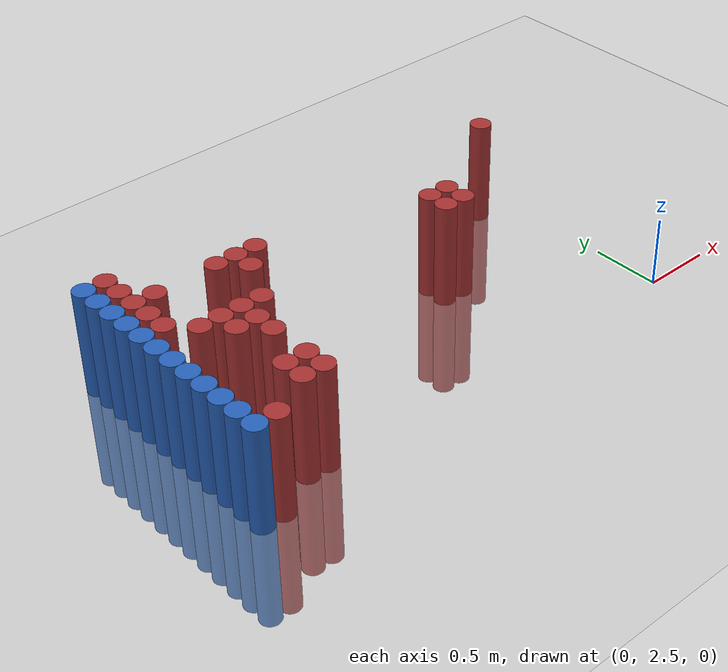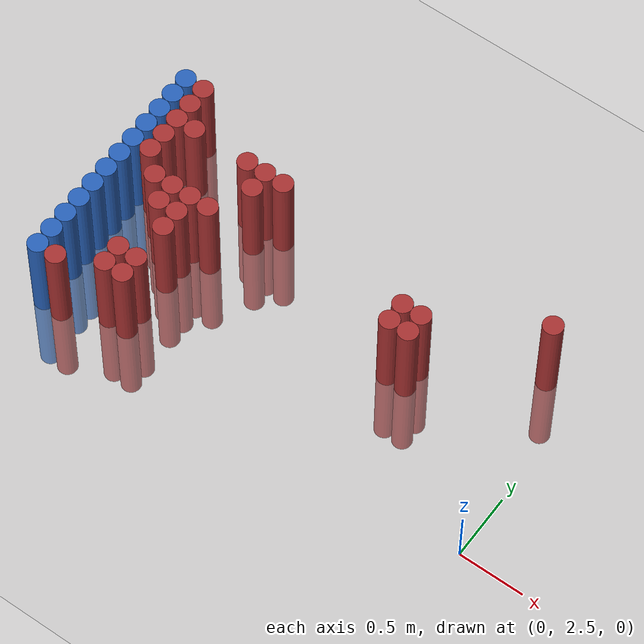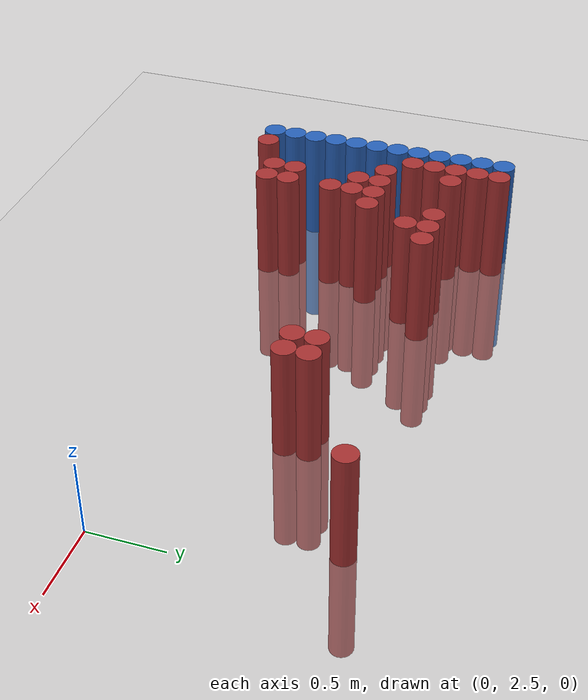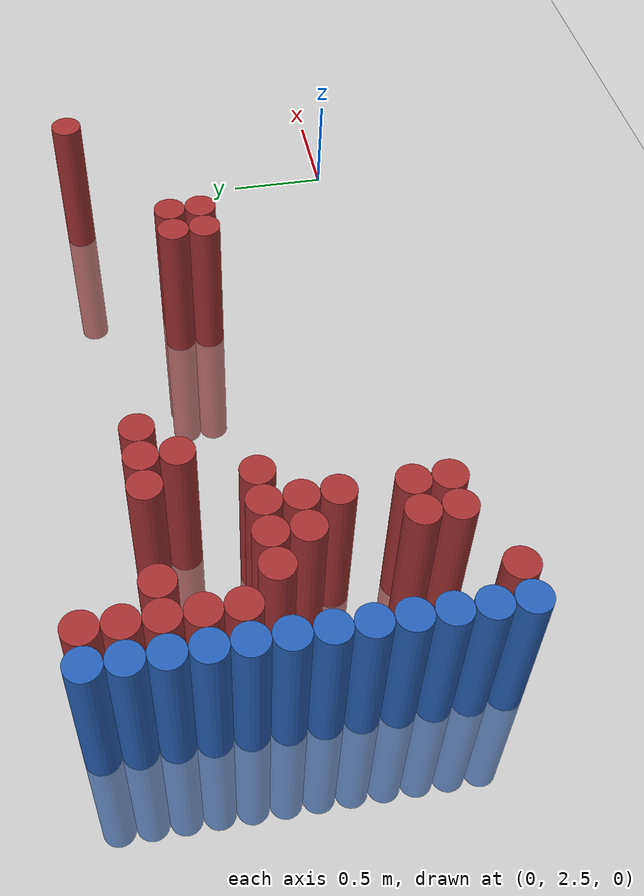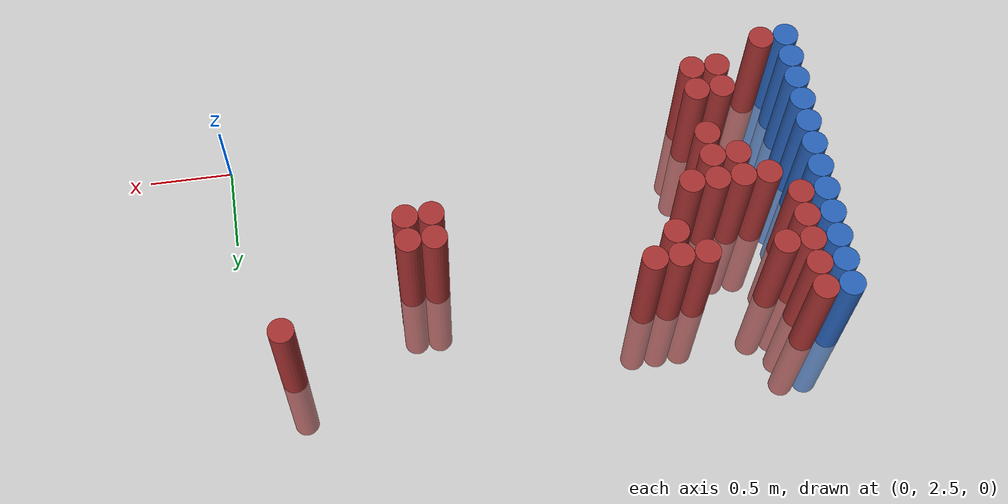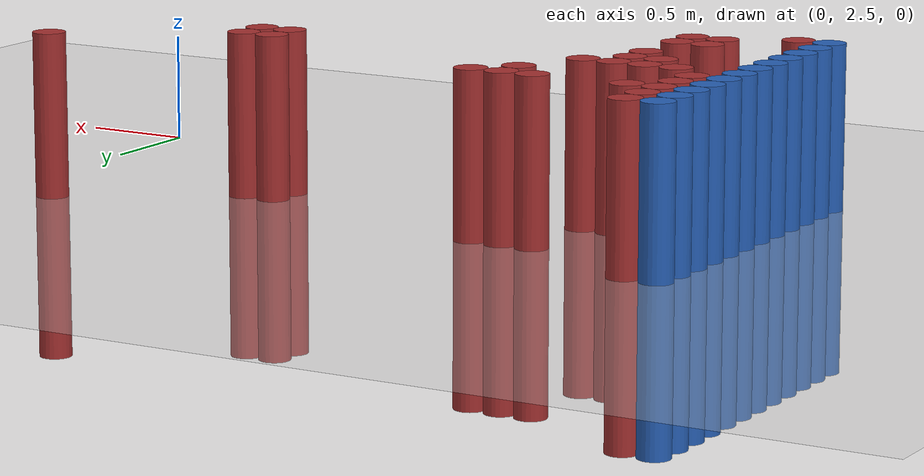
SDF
<sdf version="1.6">
 <world name="default">
  <model name="ground_plane">
   <static>1</static>
   <link name="link">
    <collision name="collision">
     <geometry><plane><normal>0 0 1</normal><size>100 100</size></plane></geometry>
     <surface><friction><ode><mu>100</mu><mu2>50</mu2></ode></friction></surface>
    </collision>
    <visual name="visual">
     <cast_shadows>0</cast_shadows>
     <geometry><plane><normal>0 0 1</normal><size>100 100</size></plane></geometry>
     <material>
      <script><uri>file://media/materials/scripts/gazebo.material</uri><name>Gazebo/Grey</name></script>
     </material>
    </visual>
   </link>
  </model>
  <model name="unit_cylinder_147">
   <static>1</static>
   <pose>-3.425000 2.425000 0.000000 0.000000 0.000000 0.000000</pose>
   <link name="link">
    <inertial>
     <mass>1</mass>
     <inertia><ixx>0.145833</ixx><ixy>0</ixy><ixz>0</ixz><iyy>0.145833</iyy><iyz>0</iyz><izz>0.125</izz></inertia>
    </inertial>
    <collision name="collision">
     <geometry><cylinder><radius>0.075000</radius><length>1.5</length></cylinder></geometry>
    </collision>
    <visual name="visual">
     <geometry><cylinder><radius>0.075000</radius><length>1.5</length></cylinder></geometry>
     <material>
      <ambient>0.152000 0.379000 0.720000 1</ambient>
      <diffuse>0.152000 0.379000 0.720000 1</diffuse>
     </material>
     <material>
      <script><name>Gazebo/Grey</name><uri>file://media/materials/scripts/gazebo.material</uri></script>
     </material>
    </visual>
   </link>
  </model>
  <model name="unit_cylinder_149">
   <static>1</static>
   <pose>-3.425000 2.575000 0.000000 0.000000 0.000000 0.000000</pose>
   <link name="link">
    <inertial>
     <mass>1</mass>
     <inertia><ixx>0.145833</ixx><ixy>0</ixy><ixz>0</ixz><iyy>0.145833</iyy><iyz>0</iyz><izz>0.125</izz></inertia>
    </inertial>
    <collision name="collision">
     <geometry><cylinder><radius>0.075000</radius><length>1.5</length></cylinder></geometry>
    </collision>
    <visual name="visual">
     <geometry><cylinder><radius>0.075000</radius><length>1.5</length></cylinder></geometry>
     <material>
      <ambient>0.152000 0.379000 0.720000 1</ambient>
      <diffuse>0.152000 0.379000 0.720000 1</diffuse>
     </material>
     <material>
      <script><name>Gazebo/Grey</name><uri>file://media/materials/scripts/gazebo.material</uri></script>
     </material>
    </visual>
   </link>
  </model>
  <model name="unit_cylinder_151">
   <static>1</static>
   <pose>-3.425000 2.725000 0.000000 0.000000 0.000000 0.000000</pose>
   <link name="link">
    <inertial>
     <mass>1</mass>
     <inertia><ixx>0.145833</ixx><ixy>0</ixy><ixz>0</ixz><iyy>0.145833</iyy><iyz>0</iyz><izz>0.125</izz></inertia>
    </inertial>
    <collision name="collision">
     <geometry><cylinder><radius>0.075000</radius><length>1.5</length></cylinder></geometry>
    </collision>
    <visual name="visual">
     <geometry><cylinder><radius>0.075000</radius><length>1.5</length></cylinder></geometry>
     <material>
      <ambient>0.152000 0.379000 0.720000 1</ambient>
      <diffuse>0.152000 0.379000 0.720000 1</diffuse>
     </material>
     <material>
      <script><name>Gazebo/Grey</name><uri>file://media/materials/scripts/gazebo.material</uri></script>
     </material>
    </visual>
   </link>
  </model>
  <model name="unit_cylinder_153">
   <static>1</static>
   <pose>-3.425000 2.875000 0.000000 0.000000 0.000000 0.000000</pose>
   <link name="link">
    <inertial>
     <mass>1</mass>
     <inertia><ixx>0.145833</ixx><ixy>0</ixy><ixz>0</ixz><iyy>0.145833</iyy><iyz>0</iyz><izz>0.125</izz></inertia>
    </inertial>
    <collision name="collision">
     <geometry><cylinder><radius>0.075000</radius><length>1.5</length></cylinder></geometry>
    </collision>
    <visual name="visual">
     <geometry><cylinder><radius>0.075000</radius><length>1.5</length></cylinder></geometry>
     <material>
      <ambient>0.152000 0.379000 0.720000 1</ambient>
      <diffuse>0.152000 0.379000 0.720000 1</diffuse>
     </material>
     <material>
      <script><name>Gazebo/Grey</name><uri>file://media/materials/scripts/gazebo.material</uri></script>
     </material>
    </visual>
   </link>
  </model>
  <model name="unit_cylinder_155">
   <static>1</static>
   <pose>-3.425000 3.025000 0.000000 0.000000 0.000000 0.000000</pose>
   <link name="link">
    <inertial>
     <mass>1</mass>
     <inertia><ixx>0.145833</ixx><ixy>0</ixy><ixz>0</ixz><iyy>0.145833</iyy><iyz>0</iyz><izz>0.125</izz></inertia>
    </inertial>
    <collision name="collision">
     <geometry><cylinder><radius>0.075000</radius><length>1.5</length></cylinder></geometry>
    </collision>
    <visual name="visual">
     <geometry><cylinder><radius>0.075000</radius><length>1.5</length></cylinder></geometry>
     <material>
      <ambient>0.152000 0.379000 0.720000 1</ambient>
      <diffuse>0.152000 0.379000 0.720000 1</diffuse>
     </material>
     <material>
      <script><name>Gazebo/Grey</name><uri>file://media/materials/scripts/gazebo.material</uri></script>
     </material>
    </visual>
   </link>
  </model>
  <model name="unit_cylinder_157">
   <static>1</static>
   <pose>-3.425000 3.175000 0.000000 0.000000 0.000000 0.000000</pose>
   <link name="link">
    <inertial>
     <mass>1</mass>
     <inertia><ixx>0.145833</ixx><ixy>0</ixy><ixz>0</ixz><iyy>0.145833</iyy><iyz>0</iyz><izz>0.125</izz></inertia>
    </inertial>
    <collision name="collision">
     <geometry><cylinder><radius>0.075000</radius><length>1.5</length></cylinder></geometry>
    </collision>
    <visual name="visual">
     <geometry><cylinder><radius>0.075000</radius><length>1.5</length></cylinder></geometry>
     <material>
      <ambient>0.152000 0.379000 0.720000 1</ambient>
      <diffuse>0.152000 0.379000 0.720000 1</diffuse>
     </material>
     <material>
      <script><name>Gazebo/Grey</name><uri>file://media/materials/scripts/gazebo.material</uri></script>
     </material>
    </visual>
   </link>
  </model>
  <model name="unit_cylinder_159">
   <static>1</static>
   <pose>-3.425000 3.325000 0.000000 0.000000 0.000000 0.000000</pose>
   <link name="link">
    <inertial>
     <mass>1</mass>
     <inertia><ixx>0.145833</ixx><ixy>0</ixy><ixz>0</ixz><iyy>0.145833</iyy><iyz>0</iyz><izz>0.125</izz></inertia>
    </inertial>
    <collision name="collision">
     <geometry><cylinder><radius>0.075000</radius><length>1.5</length></cylinder></geometry>
    </collision>
    <visual name="visual">
     <geometry><cylinder><radius>0.075000</radius><length>1.5</length></cylinder></geometry>
     <material>
      <ambient>0.152000 0.379000 0.720000 1</ambient>
      <diffuse>0.152000 0.379000 0.720000 1</diffuse>
     </material>
     <material>
      <script><name>Gazebo/Grey</name><uri>file://media/materials/scripts/gazebo.material</uri></script>
     </material>
    </visual>
   </link>
  </model>
  <model name="unit_cylinder_161">
   <static>1</static>
   <pose>-3.425000 3.475000 0.000000 0.000000 0.000000 0.000000</pose>
   <link name="link">
    <inertial>
     <mass>1</mass>
     <inertia><ixx>0.145833</ixx><ixy>0</ixy><ixz>0</ixz><iyy>0.145833</iyy><iyz>0</iyz><izz>0.125</izz></inertia>
    </inertial>
    <collision name="collision">
     <geometry><cylinder><radius>0.075000</radius><length>1.5</length></cylinder></geometry>
    </collision>
    <visual name="visual">
     <geometry><cylinder><radius>0.075000</radius><length>1.5</length></cylinder></geometry>
     <material>
      <ambient>0.152000 0.379000 0.720000 1</ambient>
      <diffuse>0.152000 0.379000 0.720000 1</diffuse>
     </material>
     <material>
      <script><name>Gazebo/Grey</name><uri>file://media/materials/scripts/gazebo.material</uri></script>
     </material>
    </visual>
   </link>
  </model>
  <model name="unit_cylinder_163">
   <static>1</static>
   <pose>-3.425000 3.625000 0.000000 0.000000 0.000000 0.000000</pose>
   <link name="link">
    <inertial>
     <mass>1</mass>
     <inertia><ixx>0.145833</ixx><ixy>0</ixy><ixz>0</ixz><iyy>0.145833</iyy><iyz>0</iyz><izz>0.125</izz></inertia>
    </inertial>
    <collision name="collision">
     <geometry><cylinder><radius>0.075000</radius><length>1.5</length></cylinder></geometry>
    </collision>
    <visual name="visual">
     <geometry><cylinder><radius>0.075000</radius><length>1.5</length></cylinder></geometry>
     <material>
      <ambient>0.152000 0.379000 0.720000 1</ambient>
      <diffuse>0.152000 0.379000 0.720000 1</diffuse>
     </material>
     <material>
      <script><name>Gazebo/Grey</name><uri>file://media/materials/scripts/gazebo.material</uri></script>
     </material>
    </visual>
   </link>
  </model>
  <model name="unit_cylinder_165">
   <static>1</static>
   <pose>-3.425000 3.775000 0.000000 0.000000 0.000000 0.000000</pose>
   <link name="link">
    <inertial>
     <mass>1</mass>
     <inertia><ixx>0.145833</ixx><ixy>0</ixy><ixz>0</ixz><iyy>0.145833</iyy><iyz>0</iyz><izz>0.125</izz></inertia>
    </inertial>
    <collision name="collision">
     <geometry><cylinder><radius>0.075000</radius><length>1.5</length></cylinder></geometry>
    </collision>
    <visual name="visual">
     <geometry><cylinder><radius>0.075000</radius><length>1.5</length></cylinder></geometry>
     <material>
      <ambient>0.152000 0.379000 0.720000 1</ambient>
      <diffuse>0.152000 0.379000 0.720000 1</diffuse>
     </material>
     <material>
      <script><name>Gazebo/Grey</name><uri>file://media/materials/scripts/gazebo.material</uri></script>
     </material>
    </visual>
   </link>
  </model>
  <model name="unit_cylinder_167">
   <static>1</static>
   <pose>-3.425000 3.925000 0.000000 0.000000 0.000000 0.000000</pose>
   <link name="link">
    <inertial>
     <mass>1</mass>
     <inertia><ixx>0.145833</ixx><ixy>0</ixy><ixz>0</ixz><iyy>0.145833</iyy><iyz>0</iyz><izz>0.125</izz></inertia>
    </inertial>
    <collision name="collision">
     <geometry><cylinder><radius>0.075000</radius><length>1.5</length></cylinder></geometry>
    </collision>
    <visual name="visual">
     <geometry><cylinder><radius>0.075000</radius><length>1.5</length></cylinder></geometry>
     <material>
      <ambient>0.152000 0.379000 0.720000 1</ambient>
      <diffuse>0.152000 0.379000 0.720000 1</diffuse>
     </material>
     <material>
      <script><name>Gazebo/Grey</name><uri>file://media/materials/scripts/gazebo.material</uri></script>
     </material>
    </visual>
   </link>
  </model>
  <model name="unit_cylinder_169">
   <static>1</static>
   <pose>-3.425000 4.075000 0.000000 0.000000 0.000000 0.000000</pose>
   <link name="link">
    <inertial>
     <mass>1</mass>
     <inertia><ixx>0.145833</ixx><ixy>0</ixy><ixz>0</ixz><iyy>0.145833</iyy><iyz>0</iyz><izz>0.125</izz></inertia>
    </inertial>
    <collision name="collision">
     <geometry><cylinder><radius>0.075000</radius><length>1.5</length></cylinder></geometry>
    </collision>
    <visual name="visual">
     <geometry><cylinder><radius>0.075000</radius><length>1.5</length></cylinder></geometry>
     <material>
      <ambient>0.152000 0.379000 0.720000 1</ambient>
      <diffuse>0.152000 0.379000 0.720000 1</diffuse>
     </material>
     <material>
      <script><name>Gazebo/Grey</name><uri>file://media/materials/scripts/gazebo.material</uri></script>
     </material>
    </visual>
   </link>
  </model>
  <model name="unit_cylinder_237">
   <static>1</static>
   <pose>-3.425000 2.425000 0.000000 0.000000 0.000000 0.000000</pose>
   <link name="link">
    <inertial>
     <mass>1</mass>
     <inertia><ixx>0.145833</ixx><ixy>0</ixy><ixz>0</ixz><iyy>0.145833</iyy><iyz>0</iyz><izz>0.125</izz></inertia>
    </inertial>
    <collision name="collision">
     <geometry><cylinder><radius>0.075000</radius><length>1.5</length></cylinder></geometry>
    </collision>
    <visual name="visual">
     <geometry><cylinder><radius>0.075000</radius><length>1.5</length></cylinder></geometry>
     <material>
      <ambient>0.152000 0.379000 0.720000 1</ambient>
      <diffuse>0.152000 0.379000 0.720000 1</diffuse>
     </material>
     <material>
      <script><name>Gazebo/Grey</name><uri>file://media/materials/scripts/gazebo.material</uri></script>
     </material>
    </visual>
   </link>
  </model>
  <model name="unit_cylinder_238">
   <static>1</static>
   <pose>-3.425000 2.575000 0.000000 0.000000 0.000000 0.000000</pose>
   <link name="link">
    <inertial>
     <mass>1</mass>
     <inertia><ixx>0.145833</ixx><ixy>0</ixy><ixz>0</ixz><iyy>0.145833</iyy><iyz>0</iyz><izz>0.125</izz></inertia>
    </inertial>
    <collision name="collision">
     <geometry><cylinder><radius>0.075000</radius><length>1.5</length></cylinder></geometry>
    </collision>
    <visual name="visual">
     <geometry><cylinder><radius>0.075000</radius><length>1.5</length></cylinder></geometry>
     <material>
      <ambient>0.152000 0.379000 0.720000 1</ambient>
      <diffuse>0.152000 0.379000 0.720000 1</diffuse>
     </material>
     <material>
      <script><name>Gazebo/Grey</name><uri>file://media/materials/scripts/gazebo.material</uri></script>
     </material>
    </visual>
   </link>
  </model>
  <model name="unit_cylinder_239">
   <static>1</static>
   <pose>-3.425000 2.725000 0.000000 0.000000 0.000000 0.000000</pose>
   <link name="link">
    <inertial>
     <mass>1</mass>
     <inertia><ixx>0.145833</ixx><ixy>0</ixy><ixz>0</ixz><iyy>0.145833</iyy><iyz>0</iyz><izz>0.125</izz></inertia>
    </inertial>
    <collision name="collision">
     <geometry><cylinder><radius>0.075000</radius><length>1.5</length></cylinder></geometry>
    </collision>
    <visual name="visual">
     <geometry><cylinder><radius>0.075000</radius><length>1.5</length></cylinder></geometry>
     <material>
      <ambient>0.152000 0.379000 0.720000 1</ambient>
      <diffuse>0.152000 0.379000 0.720000 1</diffuse>
     </material>
     <material>
      <script><name>Gazebo/Grey</name><uri>file://media/materials/scripts/gazebo.material</uri></script>
     </material>
    </visual>
   </link>
  </model>
  <model name="unit_cylinder_240">
   <static>1</static>
   <pose>-3.425000 2.875000 0.000000 0.000000 0.000000 0.000000</pose>
   <link name="link">
    <inertial>
     <mass>1</mass>
     <inertia><ixx>0.145833</ixx><ixy>0</ixy><ixz>0</ixz><iyy>0.145833</iyy><iyz>0</iyz><izz>0.125</izz></inertia>
    </inertial>
    <collision name="collision">
     <geometry><cylinder><radius>0.075000</radius><length>1.5</length></cylinder></geometry>
    </collision>
    <visual name="visual">
     <geometry><cylinder><radius>0.075000</radius><length>1.5</length></cylinder></geometry>
     <material>
      <ambient>0.152000 0.379000 0.720000 1</ambient>
      <diffuse>0.152000 0.379000 0.720000 1</diffuse>
     </material>
     <material>
      <script><name>Gazebo/Grey</name><uri>file://media/materials/scripts/gazebo.material</uri></script>
     </material>
    </visual>
   </link>
  </model>
  <model name="unit_cylinder_241">
   <static>1</static>
   <pose>-3.425000 3.025000 0.000000 0.000000 0.000000 0.000000</pose>
   <link name="link">
    <inertial>
     <mass>1</mass>
     <inertia><ixx>0.145833</ixx><ixy>0</ixy><ixz>0</ixz><iyy>0.145833</iyy><iyz>0</iyz><izz>0.125</izz></inertia>
    </inertial>
    <collision name="collision">
     <geometry><cylinder><radius>0.075000</radius><length>1.5</length></cylinder></geometry>
    </collision>
    <visual name="visual">
     <geometry><cylinder><radius>0.075000</radius><length>1.5</length></cylinder></geometry>
     <material>
      <ambient>0.152000 0.379000 0.720000 1</ambient>
      <diffuse>0.152000 0.379000 0.720000 1</diffuse>
     </material>
     <material>
      <script><name>Gazebo/Grey</name><uri>file://media/materials/scripts/gazebo.material</uri></script>
     </material>
    </visual>
   </link>
  </model>
  <model name="unit_cylinder_242">
   <static>1</static>
   <pose>-3.425000 3.175000 0.000000 0.000000 0.000000 0.000000</pose>
   <link name="link">
    <inertial>
     <mass>1</mass>
     <inertia><ixx>0.145833</ixx><ixy>0</ixy><ixz>0</ixz><iyy>0.145833</iyy><iyz>0</iyz><izz>0.125</izz></inertia>
    </inertial>
    <collision name="collision">
     <geometry><cylinder><radius>0.075000</radius><length>1.5</length></cylinder></geometry>
    </collision>
    <visual name="visual">
     <geometry><cylinder><radius>0.075000</radius><length>1.5</length></cylinder></geometry>
     <material>
      <ambient>0.152000 0.379000 0.720000 1</ambient>
      <diffuse>0.152000 0.379000 0.720000 1</diffuse>
     </material>
     <material>
      <script><name>Gazebo/Grey</name><uri>file://media/materials/scripts/gazebo.material</uri></script>
     </material>
    </visual>
   </link>
  </model>
  <model name="unit_cylinder_243">
   <static>1</static>
   <pose>-3.425000 3.325000 0.000000 0.000000 0.000000 0.000000</pose>
   <link name="link">
    <inertial>
     <mass>1</mass>
     <inertia><ixx>0.145833</ixx><ixy>0</ixy><ixz>0</ixz><iyy>0.145833</iyy><iyz>0</iyz><izz>0.125</izz></inertia>
    </inertial>
    <collision name="collision">
     <geometry><cylinder><radius>0.075000</radius><length>1.5</length></cylinder></geometry>
    </collision>
    <visual name="visual">
     <geometry><cylinder><radius>0.075000</radius><length>1.5</length></cylinder></geometry>
     <material>
      <ambient>0.152000 0.379000 0.720000 1</ambient>
      <diffuse>0.152000 0.379000 0.720000 1</diffuse>
     </material>
     <material>
      <script><name>Gazebo/Grey</name><uri>file://media/materials/scripts/gazebo.material</uri></script>
     </material>
    </visual>
   </link>
  </model>
  <model name="unit_cylinder_244">
   <static>1</static>
   <pose>-3.425000 3.475000 0.000000 0.000000 0.000000 0.000000</pose>
   <link name="link">
    <inertial>
     <mass>1</mass>
     <inertia><ixx>0.145833</ixx><ixy>0</ixy><ixz>0</ixz><iyy>0.145833</iyy><iyz>0</iyz><izz>0.125</izz></inertia>
    </inertial>
    <collision name="collision">
     <geometry><cylinder><radius>0.075000</radius><length>1.5</length></cylinder></geometry>
    </collision>
    <visual name="visual">
     <geometry><cylinder><radius>0.075000</radius><length>1.5</length></cylinder></geometry>
     <material>
      <ambient>0.152000 0.379000 0.720000 1</ambient>
      <diffuse>0.152000 0.379000 0.720000 1</diffuse>
     </material>
     <material>
      <script><name>Gazebo/Grey</name><uri>file://media/materials/scripts/gazebo.material</uri></script>
     </material>
    </visual>
   </link>
  </model>
  <model name="unit_cylinder_245">
   <static>1</static>
   <pose>-3.425000 3.625000 0.000000 0.000000 0.000000 0.000000</pose>
   <link name="link">
    <inertial>
     <mass>1</mass>
     <inertia><ixx>0.145833</ixx><ixy>0</ixy><ixz>0</ixz><iyy>0.145833</iyy><iyz>0</iyz><izz>0.125</izz></inertia>
    </inertial>
    <collision name="collision">
     <geometry><cylinder><radius>0.075000</radius><length>1.5</length></cylinder></geometry>
    </collision>
    <visual name="visual">
     <geometry><cylinder><radius>0.075000</radius><length>1.5</length></cylinder></geometry>
     <material>
      <ambient>0.152000 0.379000 0.720000 1</ambient>
      <diffuse>0.152000 0.379000 0.720000 1</diffuse>
     </material>
     <material>
      <script><name>Gazebo/Grey</name><uri>file://media/materials/scripts/gazebo.material</uri></script>
     </material>
    </visual>
   </link>
  </model>
  <model name="unit_cylinder_246">
   <static>1</static>
   <pose>-3.425000 3.775000 0.000000 0.000000 0.000000 0.000000</pose>
   <link name="link">
    <inertial>
     <mass>1</mass>
     <inertia><ixx>0.145833</ixx><ixy>0</ixy><ixz>0</ixz><iyy>0.145833</iyy><iyz>0</iyz><izz>0.125</izz></inertia>
    </inertial>
    <collision name="collision">
     <geometry><cylinder><radius>0.075000</radius><length>1.5</length></cylinder></geometry>
    </collision>
    <visual name="visual">
     <geometry><cylinder><radius>0.075000</radius><length>1.5</length></cylinder></geometry>
     <material>
      <ambient>0.152000 0.379000 0.720000 1</ambient>
      <diffuse>0.152000 0.379000 0.720000 1</diffuse>
     </material>
     <material>
      <script><name>Gazebo/Grey</name><uri>file://media/materials/scripts/gazebo.material</uri></script>
     </material>
    </visual>
   </link>
  </model>
  <model name="unit_cylinder_247">
   <static>1</static>
   <pose>-3.425000 3.925000 0.000000 0.000000 0.000000 0.000000</pose>
   <link name="link">
    <inertial>
     <mass>1</mass>
     <inertia><ixx>0.145833</ixx><ixy>0</ixy><ixz>0</ixz><iyy>0.145833</iyy><iyz>0</iyz><izz>0.125</izz></inertia>
    </inertial>
    <collision name="collision">
     <geometry><cylinder><radius>0.075000</radius><length>1.5</length></cylinder></geometry>
    </collision>
    <visual name="visual">
     <geometry><cylinder><radius>0.075000</radius><length>1.5</length></cylinder></geometry>
     <material>
      <ambient>0.152000 0.379000 0.720000 1</ambient>
      <diffuse>0.152000 0.379000 0.720000 1</diffuse>
     </material>
     <material>
      <script><name>Gazebo/Grey</name><uri>file://media/materials/scripts/gazebo.material</uri></script>
     </material>
    </visual>
   </link>
  </model>
  <model name="unit_cylinder_248">
   <static>1</static>
   <pose>-3.425000 4.075000 0.000000 0.000000 0.000000 0.000000</pose>
   <link name="link">
    <inertial>
     <mass>1</mass>
     <inertia><ixx>0.145833</ixx><ixy>0</ixy><ixz>0</ixz><iyy>0.145833</iyy><iyz>0</iyz><izz>0.125</izz></inertia>
    </inertial>
    <collision name="collision">
     <geometry><cylinder><radius>0.075000</radius><length>1.5</length></cylinder></geometry>
    </collision>
    <visual name="visual">
     <geometry><cylinder><radius>0.075000</radius><length>1.5</length></cylinder></geometry>
     <material>
      <ambient>0.152000 0.379000 0.720000 1</ambient>
      <diffuse>0.152000 0.379000 0.720000 1</diffuse>
     </material>
     <material>
      <script><name>Gazebo/Grey</name><uri>file://media/materials/scripts/gazebo.material</uri></script>
     </material>
    </visual>
   </link>
  </model>
  <model name="unit_cylinder_268">
   <static>1</static>
   <pose>-3.275000 2.425000 0.000000 0.000000 0.000000 0.000000</pose>
   <link name="link">
    <inertial>
     <mass>1</mass>
     <inertia><ixx>0.145833</ixx><ixy>0</ixy><ixz>0</ixz><iyy>0.145833</iyy><iyz>0</iyz><izz>0.125</izz></inertia>
    </inertial>
    <collision name="collision">
     <geometry><cylinder><radius>0.075000</radius><length>1.5</length></cylinder></geometry>
    </collision>
    <visual name="visual">
     <geometry><cylinder><radius>0.075000</radius><length>1.5</length></cylinder></geometry>
     <material>
      <ambient>0.648000 0.192000 0.192000 1</ambient>
      <diffuse>0.648000 0.192000 0.192000 1</diffuse>
     </material>
     <material>
      <script><name>Gazebo/Grey</name><uri>file://media/materials/scripts/gazebo.material</uri></script>
     </material>
    </visual>
   </link>
  </model>
  <model name="unit_cylinder_269">
   <static>1</static>
   <pose>-3.275000 3.475000 0.000000 0.000000 0.000000 0.000000</pose>
   <link name="link">
    <inertial>
     <mass>1</mass>
     <inertia><ixx>0.145833</ixx><ixy>0</ixy><ixz>0</ixz><iyy>0.145833</iyy><iyz>0</iyz><izz>0.125</izz></inertia>
    </inertial>
    <collision name="collision">
     <geometry><cylinder><radius>0.075000</radius><length>1.5</length></cylinder></geometry>
    </collision>
    <visual name="visual">
     <geometry><cylinder><radius>0.075000</radius><length>1.5</length></cylinder></geometry>
     <material>
      <ambient>0.648000 0.192000 0.192000 1</ambient>
      <diffuse>0.648000 0.192000 0.192000 1</diffuse>
     </material>
     <material>
      <script><name>Gazebo/Grey</name><uri>file://media/materials/scripts/gazebo.material</uri></script>
     </material>
    </visual>
   </link>
  </model>
  <model name="unit_cylinder_270">
   <static>1</static>
   <pose>-3.275000 3.625000 0.000000 0.000000 0.000000 0.000000</pose>
   <link name="link">
    <inertial>
     <mass>1</mass>
     <inertia><ixx>0.145833</ixx><ixy>0</ixy><ixz>0</ixz><iyy>0.145833</iyy><iyz>0</iyz><izz>0.125</izz></inertia>
    </inertial>
    <collision name="collision">
     <geometry><cylinder><radius>0.075000</radius><length>1.5</length></cylinder></geometry>
    </collision>
    <visual name="visual">
     <geometry><cylinder><radius>0.075000</radius><length>1.5</length></cylinder></geometry>
     <material>
      <ambient>0.648000 0.192000 0.192000 1</ambient>
      <diffuse>0.648000 0.192000 0.192000 1</diffuse>
     </material>
     <material>
      <script><name>Gazebo/Grey</name><uri>file://media/materials/scripts/gazebo.material</uri></script>
     </material>
    </visual>
   </link>
  </model>
  <model name="unit_cylinder_271">
   <static>1</static>
   <pose>-3.275000 3.775000 0.000000 0.000000 0.000000 0.000000</pose>
   <link name="link">
    <inertial>
     <mass>1</mass>
     <inertia><ixx>0.145833</ixx><ixy>0</ixy><ixz>0</ixz><iyy>0.145833</iyy><iyz>0</iyz><izz>0.125</izz></inertia>
    </inertial>
    <collision name="collision">
     <geometry><cylinder><radius>0.075000</radius><length>1.5</length></cylinder></geometry>
    </collision>
    <visual name="visual">
     <geometry><cylinder><radius>0.075000</radius><length>1.5</length></cylinder></geometry>
     <material>
      <ambient>0.648000 0.192000 0.192000 1</ambient>
      <diffuse>0.648000 0.192000 0.192000 1</diffuse>
     </material>
     <material>
      <script><name>Gazebo/Grey</name><uri>file://media/materials/scripts/gazebo.material</uri></script>
     </material>
    </visual>
   </link>
  </model>
  <model name="unit_cylinder_272">
   <static>1</static>
   <pose>-3.275000 3.925000 0.000000 0.000000 0.000000 0.000000</pose>
   <link name="link">
    <inertial>
     <mass>1</mass>
     <inertia><ixx>0.145833</ixx><ixy>0</ixy><ixz>0</ixz><iyy>0.145833</iyy><iyz>0</iyz><izz>0.125</izz></inertia>
    </inertial>
    <collision name="collision">
     <geometry><cylinder><radius>0.075000</radius><length>1.5</length></cylinder></geometry>
    </collision>
    <visual name="visual">
     <geometry><cylinder><radius>0.075000</radius><length>1.5</length></cylinder></geometry>
     <material>
      <ambient>0.648000 0.192000 0.192000 1</ambient>
      <diffuse>0.648000 0.192000 0.192000 1</diffuse>
     </material>
     <material>
      <script><name>Gazebo/Grey</name><uri>file://media/materials/scripts/gazebo.material</uri></script>
     </material>
    </visual>
   </link>
  </model>
  <model name="unit_cylinder_273">
   <static>1</static>
   <pose>-3.275000 4.075000 0.000000 0.000000 0.000000 0.000000</pose>
   <link name="link">
    <inertial>
     <mass>1</mass>
     <inertia><ixx>0.145833</ixx><ixy>0</ixy><ixz>0</ixz><iyy>0.145833</iyy><iyz>0</iyz><izz>0.125</izz></inertia>
    </inertial>
    <collision name="collision">
     <geometry><cylinder><radius>0.075000</radius><length>1.5</length></cylinder></geometry>
    </collision>
    <visual name="visual">
     <geometry><cylinder><radius>0.075000</radius><length>1.5</length></cylinder></geometry>
     <material>
      <ambient>0.648000 0.192000 0.192000 1</ambient>
      <diffuse>0.648000 0.192000 0.192000 1</diffuse>
     </material>
     <material>
      <script><name>Gazebo/Grey</name><uri>file://media/materials/scripts/gazebo.material</uri></script>
     </material>
    </visual>
   </link>
  </model>
  <model name="unit_cylinder_281">
   <static>1</static>
   <pose>-3.125000 3.325000 0.000000 0.000000 0.000000 0.000000</pose>
   <link name="link">
    <inertial>
     <mass>1</mass>
     <inertia><ixx>0.145833</ixx><ixy>0</ixy><ixz>0</ixz><iyy>0.145833</iyy><iyz>0</iyz><izz>0.125</izz></inertia>
    </inertial>
    <collision name="collision">
     <geometry><cylinder><radius>0.075000</radius><length>1.5</length></cylinder></geometry>
    </collision>
    <visual name="visual">
     <geometry><cylinder><radius>0.075000</radius><length>1.5</length></cylinder></geometry>
     <material>
      <ambient>0.648000 0.192000 0.192000 1</ambient>
      <diffuse>0.648000 0.192000 0.192000 1</diffuse>
     </material>
     <material>
      <script><name>Gazebo/Grey</name><uri>file://media/materials/scripts/gazebo.material</uri></script>
     </material>
    </visual>
   </link>
  </model>
  <model name="unit_cylinder_282">
   <static>1</static>
   <pose>-3.125000 3.775000 0.000000 0.000000 0.000000 0.000000</pose>
   <link name="link">
    <inertial>
     <mass>1</mass>
     <inertia><ixx>0.145833</ixx><ixy>0</ixy><ixz>0</ixz><iyy>0.145833</iyy><iyz>0</iyz><izz>0.125</izz></inertia>
    </inertial>
    <collision name="collision">
     <geometry><cylinder><radius>0.075000</radius><length>1.5</length></cylinder></geometry>
    </collision>
    <visual name="visual">
     <geometry><cylinder><radius>0.075000</radius><length>1.5</length></cylinder></geometry>
     <material>
      <ambient>0.648000 0.192000 0.192000 1</ambient>
      <diffuse>0.648000 0.192000 0.192000 1</diffuse>
     </material>
     <material>
      <script><name>Gazebo/Grey</name><uri>file://media/materials/scripts/gazebo.material</uri></script>
     </material>
    </visual>
   </link>
  </model>
  <model name="unit_cylinder_289">
   <static>1</static>
   <pose>-2.975000 2.575000 0.000000 0.000000 0.000000 0.000000</pose>
   <link name="link">
    <inertial>
     <mass>1</mass>
     <inertia><ixx>0.145833</ixx><ixy>0</ixy><ixz>0</ixz><iyy>0.145833</iyy><iyz>0</iyz><izz>0.125</izz></inertia>
    </inertial>
    <collision name="collision">
     <geometry><cylinder><radius>0.075000</radius><length>1.5</length></cylinder></geometry>
    </collision>
    <visual name="visual">
     <geometry><cylinder><radius>0.075000</radius><length>1.5</length></cylinder></geometry>
     <material>
      <ambient>0.648000 0.192000 0.192000 1</ambient>
      <diffuse>0.648000 0.192000 0.192000 1</diffuse>
     </material>
     <material>
      <script><name>Gazebo/Grey</name><uri>file://media/materials/scripts/gazebo.material</uri></script>
     </material>
    </visual>
   </link>
  </model>
  <model name="unit_cylinder_290">
   <static>1</static>
   <pose>-2.975000 2.725000 0.000000 0.000000 0.000000 0.000000</pose>
   <link name="link">
    <inertial>
     <mass>1</mass>
     <inertia><ixx>0.145833</ixx><ixy>0</ixy><ixz>0</ixz><iyy>0.145833</iyy><iyz>0</iyz><izz>0.125</izz></inertia>
    </inertial>
    <collision name="collision">
     <geometry><cylinder><radius>0.075000</radius><length>1.5</length></cylinder></geometry>
    </collision>
    <visual name="visual">
     <geometry><cylinder><radius>0.075000</radius><length>1.5</length></cylinder></geometry>
     <material>
      <ambient>0.648000 0.192000 0.192000 1</ambient>
      <diffuse>0.648000 0.192000 0.192000 1</diffuse>
     </material>
     <material>
      <script><name>Gazebo/Grey</name><uri>file://media/materials/scripts/gazebo.material</uri></script>
     </material>
    </visual>
   </link>
  </model>
  <model name="unit_cylinder_291">
   <static>1</static>
   <pose>-2.975000 3.175000 0.000000 0.000000 0.000000 0.000000</pose>
   <link name="link">
    <inertial>
     <mass>1</mass>
     <inertia><ixx>0.145833</ixx><ixy>0</ixy><ixz>0</ixz><iyy>0.145833</iyy><iyz>0</iyz><izz>0.125</izz></inertia>
    </inertial>
    <collision name="collision">
     <geometry><cylinder><radius>0.075000</radius><length>1.5</length></cylinder></geometry>
    </collision>
    <visual name="visual">
     <geometry><cylinder><radius>0.075000</radius><length>1.5</length></cylinder></geometry>
     <material>
      <ambient>0.648000 0.192000 0.192000 1</ambient>
      <diffuse>0.648000 0.192000 0.192000 1</diffuse>
     </material>
     <material>
      <script><name>Gazebo/Grey</name><uri>file://media/materials/scripts/gazebo.material</uri></script>
     </material>
    </visual>
   </link>
  </model>
  <model name="unit_cylinder_292">
   <static>1</static>
   <pose>-2.975000 3.325000 0.000000 0.000000 0.000000 0.000000</pose>
   <link name="link">
    <inertial>
     <mass>1</mass>
     <inertia><ixx>0.145833</ixx><ixy>0</ixy><ixz>0</ixz><iyy>0.145833</iyy><iyz>0</iyz><izz>0.125</izz></inertia>
    </inertial>
    <collision name="collision">
     <geometry><cylinder><radius>0.075000</radius><length>1.5</length></cylinder></geometry>
    </collision>
    <visual name="visual">
     <geometry><cylinder><radius>0.075000</radius><length>1.5</length></cylinder></geometry>
     <material>
      <ambient>0.648000 0.192000 0.192000 1</ambient>
      <diffuse>0.648000 0.192000 0.192000 1</diffuse>
     </material>
     <material>
      <script><name>Gazebo/Grey</name><uri>file://media/materials/scripts/gazebo.material</uri></script>
     </material>
    </visual>
   </link>
  </model>
  <model name="unit_cylinder_298">
   <static>1</static>
   <pose>-2.825000 2.575000 0.000000 0.000000 0.000000 0.000000</pose>
   <link name="link">
    <inertial>
     <mass>1</mass>
     <inertia><ixx>0.145833</ixx><ixy>0</ixy><ixz>0</ixz><iyy>0.145833</iyy><iyz>0</iyz><izz>0.125</izz></inertia>
    </inertial>
    <collision name="collision">
     <geometry><cylinder><radius>0.075000</radius><length>1.5</length></cylinder></geometry>
    </collision>
    <visual name="visual">
     <geometry><cylinder><radius>0.075000</radius><length>1.5</length></cylinder></geometry>
     <material>
      <ambient>0.648000 0.192000 0.192000 1</ambient>
      <diffuse>0.648000 0.192000 0.192000 1</diffuse>
     </material>
     <material>
      <script><name>Gazebo/Grey</name><uri>file://media/materials/scripts/gazebo.material</uri></script>
     </material>
    </visual>
   </link>
  </model>
  <model name="unit_cylinder_299">
   <static>1</static>
   <pose>-2.825000 2.725000 0.000000 0.000000 0.000000 0.000000</pose>
   <link name="link">
    <inertial>
     <mass>1</mass>
     <inertia><ixx>0.145833</ixx><ixy>0</ixy><ixz>0</ixz><iyy>0.145833</iyy><iyz>0</iyz><izz>0.125</izz></inertia>
    </inertial>
    <collision name="collision">
     <geometry><cylinder><radius>0.075000</radius><length>1.5</length></cylinder></geometry>
    </collision>
    <visual name="visual">
     <geometry><cylinder><radius>0.075000</radius><length>1.5</length></cylinder></geometry>
     <material>
      <ambient>0.648000 0.192000 0.192000 1</ambient>
      <diffuse>0.648000 0.192000 0.192000 1</diffuse>
     </material>
     <material>
      <script><name>Gazebo/Grey</name><uri>file://media/materials/scripts/gazebo.material</uri></script>
     </material>
    </visual>
   </link>
  </model>
  <model name="unit_cylinder_300">
   <static>1</static>
   <pose>-2.825000 3.025000 0.000000 0.000000 0.000000 0.000000</pose>
   <link name="link">
    <inertial>
     <mass>1</mass>
     <inertia><ixx>0.145833</ixx><ixy>0</ixy><ixz>0</ixz><iyy>0.145833</iyy><iyz>0</iyz><izz>0.125</izz></inertia>
    </inertial>
    <collision name="collision">
     <geometry><cylinder><radius>0.075000</radius><length>1.5</length></cylinder></geometry>
    </collision>
    <visual name="visual">
     <geometry><cylinder><radius>0.075000</radius><length>1.5</length></cylinder></geometry>
     <material>
      <ambient>0.648000 0.192000 0.192000 1</ambient>
      <diffuse>0.648000 0.192000 0.192000 1</diffuse>
     </material>
     <material>
      <script><name>Gazebo/Grey</name><uri>file://media/materials/scripts/gazebo.material</uri></script>
     </material>
    </visual>
   </link>
  </model>
  <model name="unit_cylinder_301">
   <static>1</static>
   <pose>-2.825000 3.175000 0.000000 0.000000 0.000000 0.000000</pose>
   <link name="link">
    <inertial>
     <mass>1</mass>
     <inertia><ixx>0.145833</ixx><ixy>0</ixy><ixz>0</ixz><iyy>0.145833</iyy><iyz>0</iyz><izz>0.125</izz></inertia>
    </inertial>
    <collision name="collision">
     <geometry><cylinder><radius>0.075000</radius><length>1.5</length></cylinder></geometry>
    </collision>
    <visual name="visual">
     <geometry><cylinder><radius>0.075000</radius><length>1.5</length></cylinder></geometry>
     <material>
      <ambient>0.648000 0.192000 0.192000 1</ambient>
      <diffuse>0.648000 0.192000 0.192000 1</diffuse>
     </material>
     <material>
      <script><name>Gazebo/Grey</name><uri>file://media/materials/scripts/gazebo.material</uri></script>
     </material>
    </visual>
   </link>
  </model>
  <model name="unit_cylinder_302">
   <static>1</static>
   <pose>-2.825000 3.325000 0.000000 0.000000 0.000000 0.000000</pose>
   <link name="link">
    <inertial>
     <mass>1</mass>
     <inertia><ixx>0.145833</ixx><ixy>0</ixy><ixz>0</ixz><iyy>0.145833</iyy><iyz>0</iyz><izz>0.125</izz></inertia>
    </inertial>
    <collision name="collision">
     <geometry><cylinder><radius>0.075000</radius><length>1.5</length></cylinder></geometry>
    </collision>
    <visual name="visual">
     <geometry><cylinder><radius>0.075000</radius><length>1.5</length></cylinder></geometry>
     <material>
      <ambient>0.648000 0.192000 0.192000 1</ambient>
      <diffuse>0.648000 0.192000 0.192000 1</diffuse>
     </material>
     <material>
      <script><name>Gazebo/Grey</name><uri>file://media/materials/scripts/gazebo.material</uri></script>
     </material>
    </visual>
   </link>
  </model>
  <model name="unit_cylinder_309">
   <static>1</static>
   <pose>-2.675000 3.325000 0.000000 0.000000 0.000000 0.000000</pose>
   <link name="link">
    <inertial>
     <mass>1</mass>
     <inertia><ixx>0.145833</ixx><ixy>0</ixy><ixz>0</ixz><iyy>0.145833</iyy><iyz>0</iyz><izz>0.125</izz></inertia>
    </inertial>
    <collision name="collision">
     <geometry><cylinder><radius>0.075000</radius><length>1.5</length></cylinder></geometry>
    </collision>
    <visual name="visual">
     <geometry><cylinder><radius>0.075000</radius><length>1.5</length></cylinder></geometry>
     <material>
      <ambient>0.648000 0.192000 0.192000 1</ambient>
      <diffuse>0.648000 0.192000 0.192000 1</diffuse>
     </material>
     <material>
      <script><name>Gazebo/Grey</name><uri>file://media/materials/scripts/gazebo.material</uri></script>
     </material>
    </visual>
   </link>
  </model>
  <model name="unit_cylinder_310">
   <static>1</static>
   <pose>-2.675000 3.775000 0.000000 0.000000 0.000000 0.000000</pose>
   <link name="link">
    <inertial>
     <mass>1</mass>
     <inertia><ixx>0.145833</ixx><ixy>0</ixy><ixz>0</ixz><iyy>0.145833</iyy><iyz>0</iyz><izz>0.125</izz></inertia>
    </inertial>
    <collision name="collision">
     <geometry><cylinder><radius>0.075000</radius><length>1.5</length></cylinder></geometry>
    </collision>
    <visual name="visual">
     <geometry><cylinder><radius>0.075000</radius><length>1.5</length></cylinder></geometry>
     <material>
      <ambient>0.648000 0.192000 0.192000 1</ambient>
      <diffuse>0.648000 0.192000 0.192000 1</diffuse>
     </material>
     <material>
      <script><name>Gazebo/Grey</name><uri>file://media/materials/scripts/gazebo.material</uri></script>
     </material>
    </visual>
   </link>
  </model>
  <model name="unit_cylinder_318">
   <static>1</static>
   <pose>-2.525000 3.625000 0.000000 0.000000 0.000000 0.000000</pose>
   <link name="link">
    <inertial>
     <mass>1</mass>
     <inertia><ixx>0.145833</ixx><ixy>0</ixy><ixz>0</ixz><iyy>0.145833</iyy><iyz>0</iyz><izz>0.125</izz></inertia>
    </inertial>
    <collision name="collision">
     <geometry><cylinder><radius>0.075000</radius><length>1.5</length></cylinder></geometry>
    </collision>
    <visual name="visual">
     <geometry><cylinder><radius>0.075000</radius><length>1.5</length></cylinder></geometry>
     <material>
      <ambient>0.648000 0.192000 0.192000 1</ambient>
      <diffuse>0.648000 0.192000 0.192000 1</diffuse>
     </material>
     <material>
      <script><name>Gazebo/Grey</name><uri>file://media/materials/scripts/gazebo.material</uri></script>
     </material>
    </visual>
   </link>
  </model>
  <model name="unit_cylinder_319">
   <static>1</static>
   <pose>-2.525000 3.775000 0.000000 0.000000 0.000000 0.000000</pose>
   <link name="link">
    <inertial>
     <mass>1</mass>
     <inertia><ixx>0.145833</ixx><ixy>0</ixy><ixz>0</ixz><iyy>0.145833</iyy><iyz>0</iyz><izz>0.125</izz></inertia>
    </inertial>
    <collision name="collision">
     <geometry><cylinder><radius>0.075000</radius><length>1.5</length></cylinder></geometry>
    </collision>
    <visual name="visual">
     <geometry><cylinder><radius>0.075000</radius><length>1.5</length></cylinder></geometry>
     <material>
      <ambient>0.648000 0.192000 0.192000 1</ambient>
      <diffuse>0.648000 0.192000 0.192000 1</diffuse>
     </material>
     <material>
      <script><name>Gazebo/Grey</name><uri>file://media/materials/scripts/gazebo.material</uri></script>
     </material>
    </visual>
   </link>
  </model>
  <model name="unit_cylinder_327">
   <static>1</static>
   <pose>-2.375000 3.775000 0.000000 0.000000 0.000000 0.000000</pose>
   <link name="link">
    <inertial>
     <mass>1</mass>
     <inertia><ixx>0.145833</ixx><ixy>0</ixy><ixz>0</ixz><iyy>0.145833</iyy><iyz>0</iyz><izz>0.125</izz></inertia>
    </inertial>
    <collision name="collision">
     <geometry><cylinder><radius>0.075000</radius><length>1.5</length></cylinder></geometry>
    </collision>
    <visual name="visual">
     <geometry><cylinder><radius>0.075000</radius><length>1.5</length></cylinder></geometry>
     <material>
      <ambient>0.648000 0.192000 0.192000 1</ambient>
      <diffuse>0.648000 0.192000 0.192000 1</diffuse>
     </material>
     <material>
      <script><name>Gazebo/Grey</name><uri>file://media/materials/scripts/gazebo.material</uri></script>
     </material>
    </visual>
   </link>
  </model>
  <model name="unit_cylinder_355">
   <static>1</static>
   <pose>-1.175000 3.325000 0.000000 0.000000 0.000000 0.000000</pose>
   <link name="link">
    <inertial>
     <mass>1</mass>
     <inertia><ixx>0.145833</ixx><ixy>0</ixy><ixz>0</ixz><iyy>0.145833</iyy><iyz>0</iyz><izz>0.125</izz></inertia>
    </inertial>
    <collision name="collision">
     <geometry><cylinder><radius>0.075000</radius><length>1.5</length></cylinder></geometry>
    </collision>
    <visual name="visual">
     <geometry><cylinder><radius>0.075000</radius><length>1.5</length></cylinder></geometry>
     <material>
      <ambient>0.648000 0.192000 0.192000 1</ambient>
      <diffuse>0.648000 0.192000 0.192000 1</diffuse>
     </material>
     <material>
      <script><name>Gazebo/Grey</name><uri>file://media/materials/scripts/gazebo.material</uri></script>
     </material>
    </visual>
   </link>
  </model>
  <model name="unit_cylinder_356">
   <static>1</static>
   <pose>-1.175000 3.475000 0.000000 0.000000 0.000000 0.000000</pose>
   <link name="link">
    <inertial>
     <mass>1</mass>
     <inertia><ixx>0.145833</ixx><ixy>0</ixy><ixz>0</ixz><iyy>0.145833</iyy><iyz>0</iyz><izz>0.125</izz></inertia>
    </inertial>
    <collision name="collision">
     <geometry><cylinder><radius>0.075000</radius><length>1.5</length></cylinder></geometry>
    </collision>
    <visual name="visual">
     <geometry><cylinder><radius>0.075000</radius><length>1.5</length></cylinder></geometry>
     <material>
      <ambient>0.648000 0.192000 0.192000 1</ambient>
      <diffuse>0.648000 0.192000 0.192000 1</diffuse>
     </material>
     <material>
      <script><name>Gazebo/Grey</name><uri>file://media/materials/scripts/gazebo.material</uri></script>
     </material>
    </visual>
   </link>
  </model>
  <model name="unit_cylinder_360">
   <static>1</static>
   <pose>-1.025000 3.325000 0.000000 0.000000 0.000000 0.000000</pose>
   <link name="link">
    <inertial>
     <mass>1</mass>
     <inertia><ixx>0.145833</ixx><ixy>0</ixy><ixz>0</ixz><iyy>0.145833</iyy><iyz>0</iyz><izz>0.125</izz></inertia>
    </inertial>
    <collision name="collision">
     <geometry><cylinder><radius>0.075000</radius><length>1.5</length></cylinder></geometry>
    </collision>
    <visual name="visual">
     <geometry><cylinder><radius>0.075000</radius><length>1.5</length></cylinder></geometry>
     <material>
      <ambient>0.648000 0.192000 0.192000 1</ambient>
      <diffuse>0.648000 0.192000 0.192000 1</diffuse>
     </material>
     <material>
      <script><name>Gazebo/Grey</name><uri>file://media/materials/scripts/gazebo.material</uri></script>
     </material>
    </visual>
   </link>
  </model>
  <model name="unit_cylinder_361">
   <static>1</static>
   <pose>-1.025000 3.475000 0.000000 0.000000 0.000000 0.000000</pose>
   <link name="link">
    <inertial>
     <mass>1</mass>
     <inertia><ixx>0.145833</ixx><ixy>0</ixy><ixz>0</ixz><iyy>0.145833</iyy><iyz>0</iyz><izz>0.125</izz></inertia>
    </inertial>
    <collision name="collision">
     <geometry><cylinder><radius>0.075000</radius><length>1.5</length></cylinder></geometry>
    </collision>
    <visual name="visual">
     <geometry><cylinder><radius>0.075000</radius><length>1.5</length></cylinder></geometry>
     <material>
      <ambient>0.648000 0.192000 0.192000 1</ambient>
      <diffuse>0.648000 0.192000 0.192000 1</diffuse>
     </material>
     <material>
      <script><name>Gazebo/Grey</name><uri>file://media/materials/scripts/gazebo.material</uri></script>
     </material>
    </visual>
   </link>
  </model>
  <model name="unit_cylinder_372">
   <static>1</static>
   <pose>-0.275000 3.925000 0.000000 0.000000 0.000000 0.000000</pose>
   <link name="link">
    <inertial>
     <mass>1</mass>
     <inertia><ixx>0.145833</ixx><ixy>0</ixy><ixz>0</ixz><iyy>0.145833</iyy><iyz>0</iyz><izz>0.125</izz></inertia>
    </inertial>
    <collision name="collision">
     <geometry><cylinder><radius>0.075000</radius><length>1.5</length></cylinder></geometry>
    </collision>
    <visual name="visual">
     <geometry><cylinder><radius>0.075000</radius><length>1.5</length></cylinder></geometry>
     <material>
      <ambient>0.648000 0.192000 0.192000 1</ambient>
      <diffuse>0.648000 0.192000 0.192000 1</diffuse>
     </material>
     <material>
      <script><name>Gazebo/Grey</name><uri>file://media/materials/scripts/gazebo.material</uri></script>
     </material>
    </visual>
   </link>
  </model>
 </world>
</sdf>
